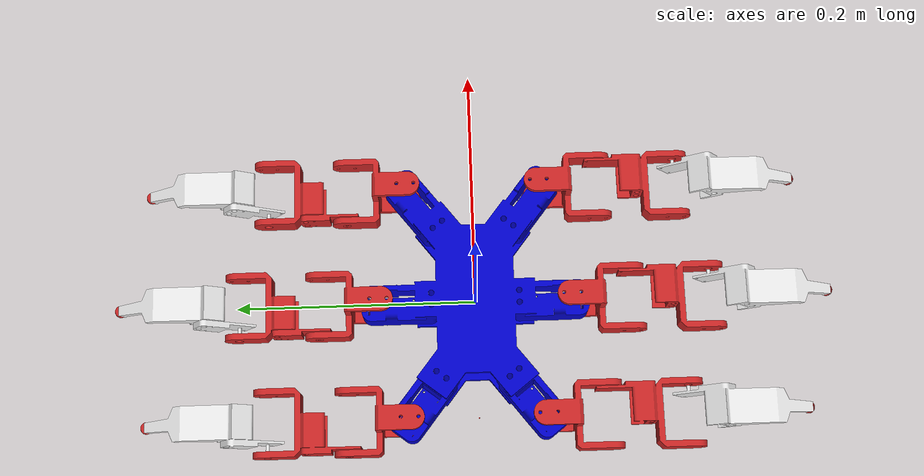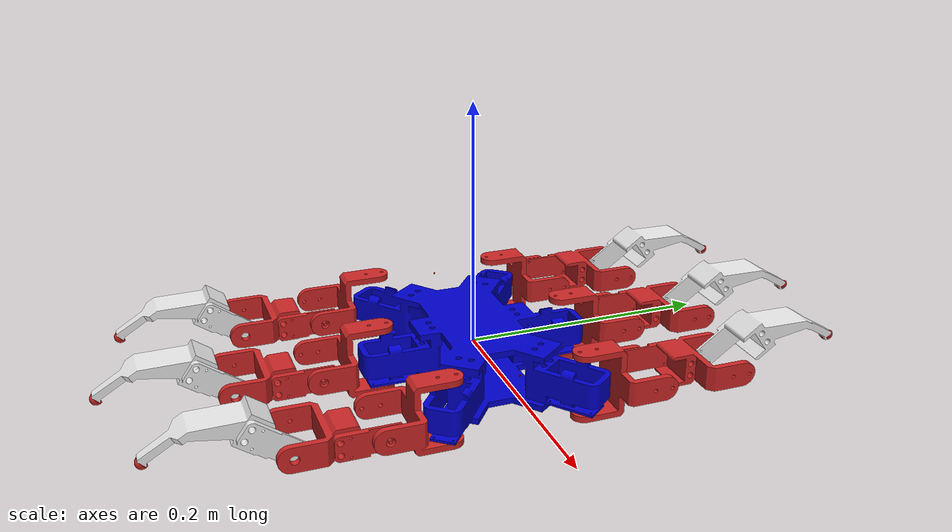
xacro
<?xml version="1.0"?>
	<robot name="myrobot" xmlns:xacro="http://ros.org/wiki/xacro">
	  <xacro:include filename="$(find multi_legged_robo_description)/urdf/common/common.urdf.xacro"/>
	   <xacro:include filename="$(find multi_legged_robo_description)/urdf/chassis/chassis.urdf.xacro"/>
	  <xacro:include filename="$(find multi_legged_robo_description)/urdf/legs/legA.urdf.xacro"/>
	  <xacro:include filename="$(find multi_legged_robo_description)/urdf/legs/legB.urdf.xacro"/>
	  <xacro:include filename="$(find multi_legged_robo_description)/urdf/legs/legC.urdf.xacro"/>
	  <xacro:include filename="$(find multi_legged_robo_description)/urdf/hball/hball.urdf.xacro"/>
	  <xacro:include filename="$(find multi_legged_robo_description)/urdf/just_object/object.urdf.xacro"/>

	  <link name="base_footprint"/>

	  <xacro:chassis parent="base_footprint">
	    <origin xyz="0 0 0 "  rpy="0 0 0"/>
	  </xacro:chassis>

	  <xacro:object parent="chassis_link"  direction="front" >
	    <origin xyz= "-0.1 0 0.0186" />
	  </xacro:object>

	  <xacro:object parent="chassis_link"  direction="back" >
	    <origin xyz= "0.1 0 0.0186" />
	  </xacro:object>

	  <xacro:legA prefix="1" parent="chassis_link" >
	   <origin xyz="0 -0.08 0" rpy="0 0 0"/>
	   <axis xyz=" 0 0 1" />
	  </xacro:legA>

	  <xacro:legB prefix="1" parent="leg1_A_link">
	    <origin xyz="0 -0.0509 0" rpy="0 0 0"/>
	    <axis xyz=" 1 0 0" />
	  </xacro:legB>

	  <xacro:legC prefix="1" parent="leg1_B_link">
	    <origin xyz="0 -0.0669 0" rpy="-0.62 0 0"/>
	    <axis xyz=" 1 0 0" />
	  </xacro:legC>

	  <xacro:legA prefix="2" parent="chassis_link" >
	   <origin xyz="0 0.08 0 " rpy=" 0 0 3.14"/>
	   <axis xyz=" 0 0 1" />
	  </xacro:legA>

	  <xacro:legB prefix="2" parent="leg2_A_link">
	    <origin xyz="0 -0.0509 0" rpy="0 0 0"/>
	    <axis xyz=" 1 0 0" />
	  </xacro:legB>

	  <xacro:legC prefix="2" parent="leg2_B_link">
	    <origin xyz="0 -0.0669 0" rpy="-0.62 0 0"/>
	    <axis xyz=" 1 0 0" />
	  </xacro:legC>

	  <xacro:legA prefix="3" parent="chassis_link" >
	   <origin xyz="0.098 -0.056 0.0 " rpy=" 0 0 0"/>
	   <axis xyz=" 0 0 1" />
	  </xacro:legA>

	  <xacro:legB prefix="3" parent="leg3_A_link">
	    <origin xyz="0 -0.0509 0" rpy="0 0 0 "/>
	    <axis xyz=" 1 0 0" />
	  </xacro:legB>

	  <xacro:legC prefix="3" parent="leg3_B_link">
	    <origin xyz="0 -0.067 0" rpy="-0.62 0 0 "/>
	    <axis xyz=" 1 0 0" />
	  </xacro:legC>

	  <xacro:legA prefix="4" parent="chassis_link" >
	   <origin xyz="0.098 0.056 0 " rpy=" 0 0 3.14"/>
	   <axis xyz=" 0 0 1" />
	  </xacro:legA>

	  <xacro:legB prefix="4" parent="leg4_A_link">
	    <origin xyz="0 -0.0509 0" rpy="0 0 0 "/>
	    <axis xyz=" 1 0 0" />
	  </xacro:legB>

	  <xacro:legC prefix="4" parent="leg4_B_link">
	    <origin xyz="0 -0.067 0" rpy="-0.62 0 0 "/>
	    <axis xyz=" 1 0 0" />
	  </xacro:legC>

	  <xacro:legA prefix="5" parent="chassis_link" >
	   <origin xyz="-0.098 -0.056 0.0 " rpy=" 0 0 0"/>
	   <axis xyz=" 0 0 1" />
	  </xacro:legA>

	  <xacro:legB prefix="5" parent="leg5_A_link">
	    <origin xyz="0 -0.0509 0" rpy="0 0 0 "/>
	    <axis xyz=" 1 0 0" />
	  </xacro:legB>

	  <xacro:legC prefix="5" parent="leg5_B_link">
	    <origin xyz="0 -0.067 0" rpy="-0.62 0 0 "/>
	    <axis xyz=" 1 0 0" />
	  </xacro:legC>

	  <xacro:legA prefix="6" parent="chassis_link" >
	   <origin xyz="-0.098 0.056 0.0 " rpy=" 0 0 3.14"/>
	   <axis xyz=" 0 0 1" />
	  </xacro:legA>

	  <xacro:legB prefix="6" parent="leg6_A_link">
	    <origin xyz="0 -0.0509 0" rpy="0 0 0 "/>
	    <axis xyz=" 1 0 0" />
	  </xacro:legB>

	  <xacro:legC prefix="6" parent="leg6_B_link">
	    <origin xyz="0 -0.067 0" rpy="-0.62 0 0 "/>
	    <axis xyz=" 1 0 0" />
	  </xacro:legC>

	  <xacro:hball number="1" parent="leg1_C_link">
	    <origin xyz="0 -0.082 -0.058" rpy="-0.17 0 0 " scale="1.5 1.5 1.5"/>
	  </xacro:hball>

	  <xacro:hball number="2" parent="leg2_C_link">
	    <origin xyz="0 -0.082 -0.058" rpy="0.17 0 0 "/>
	  </xacro:hball>

	  <xacro:hball number="3" parent="leg3_C_link">
	    <origin xyz="0 -0.082 -0.058" rpy="-0.17 0 0 "/>
	  </xacro:hball>

	  <xacro:hball number="4" parent="leg4_C_link">
	    <origin xyz="0 -0.082 -0.058" rpy="0.17 0 0 "/>
	  </xacro:hball>

	  <xacro:hball number="5" parent="leg5_C_link">
	    <origin xyz="0 -0.082 -0.058" rpy="-0.17 0 0 "/>
	  </xacro:hball>

	  <xacro:hball number="6" parent="leg6_C_link">
	    <origin xyz="0 -0.082 -0.058" rpy="0.17 0 0 "/>
	  </xacro:hball>

	  <gazebo>
	    <plugin name="gazebo_ros_control" filename="libgazebo_ros_control.so">
	      <robotSimType>gazebo_ros_control/DefaultRobotHWSim</robotSimType>
	      <robotNamespace>/myrobot</robotNamespace>
	      <legacyModeNS>true</legacyModeNS>
	    </plugin>
	  </gazebo>

</robot>

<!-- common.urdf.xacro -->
<robot xmlns:xacro="http://ros.org/wiki/xacro">
	<!-- PROPERTY LIST -->
	  <!-- Inertial. Units are kg*m^2 -->
	  <xacro:macro name="box_inertia" params="m x y z">
	    <inertia ixx="${m*(y*y+z*z)/12}" ixy = "0" ixz = "0"
	             iyy="${m*(z*z+x*x)/12}" iyz = "0"
	             izz="${m*(x*x+y*y)/12}" />
	  </xacro:macro>
	  <xacro:macro name="cylinder_inertia" params="m r h">
	    <inertia ixx="${m*(3*r*r+h*h)/12}" ixy="0" ixz="0"
	             iyy="${m*(3*r*r+h*h)/12}" iyz="0"
	             izz="${m*r*r/2}" />
	  </xacro:macro>
	  <xacro:macro name="sphere_inertia" params="m r">
	    <inertia ixx="${m*r*r/5}" ixy="0" ixz="0"
	             iyy="${m*r*r/5}" iyz="0"
	             izz="${m*r*r/5}" />
	  </xacro:macro>

	  <!-- Color -->
	  <material name="blue">
	    <color rgba="0.0 0.0 0.8 1.0"/>
	  </material>
	  <material name="green">
	    <color rgba="0.0 0.8 0.0 1.0"/>
	  </material>
	  <material name="red">
	    <color rgba="0.8 0.0 0.0 1.0"/>
	  </material>
	  <material name="white">
	    <color rgba="1.0 1.0 1.0 1.0"/>
	  </material>
	  <material name="yellow">
	    <color rgba="0.8 0.8 0.0 1.0"/>
	  </material>

</robot>

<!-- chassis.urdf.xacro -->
<robot xmlns:xacro="http://ros.org/wiki/xacro">

   <xacro:macro name="chassis" params="parent *joint_origin">
	<joint name="chassis_joint" type="fixed">
		<xacro:insert_block name="joint_origin"/>
		<parent link="${parent}"/>
		<child link="chassis_link"/>
	</joint>

	<link name="chassis_link">
		<visual>
			<geometry>
				<mesh filename="file://$(find multi_legged_robo_description)/meshes/body_6.stl" />
			</geometry>
			<material name="blue"/>
		</visual>

        //以下，gazeboで使うために追加で必要な情報（collision，inertial，gazebo reference）
		<collision>
			<geometry>
				<mesh filename="file://$(find multi_legged_robo_description)/meshes/body_6.dae"/>
			</geometry>
		</collision>

		<inertial>
			<origin xyz="0 0 0.024"/>
			<mass value="1.2"/>
			<inertia ixx="0.00032" ixy="0.0" ixz="0" iyy="0.00029" iyz="0.0" izz="0.0005" />
		</inertial>
	</link>
    //以下のコードがないと，gazeboで色を表示できない
	<gazebo reference="chassis_link">
			<material>Gazebo/Blue</material>
			<turnGravityOff>false</turnGravityOff>
	</gazebo>
  </xacro:macro>
</robot>

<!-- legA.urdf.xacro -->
<robot xmlns:xacro="http://ros.org/wiki/xacro">

	  <xacro:macro name="legA" params="prefix parent *joint_origin *joint_axis ">
	    <joint name="leg${prefix}_A_joint" type="revolute">
	      <xacro:insert_block name="joint_origin" />
	      <xacro:insert_block name="joint_axis" />
	      <limit effort="100" lower="-1.0" upper="1.0" velocity="10"/>
	      <parent link="${parent}" />
	      <child link="leg${prefix}_A_link" />
	    </joint>

	    <transmission name="legA_trans">
	      <type>transmission_interface/SimpleTransmission</type>
	      <joint name="leg${prefix}_A_joint">
	        <hardwareInterface>hardware_interface/PositionJointInterface</hardwareInterface>
	      </joint>
	      <actuator name="leg1_motor">
	        <hardwareInterface>hardware_interface/PositionointInterface</hardwareInterface>
	        <mechanismReduction>1</mechanismReduction>
	      </actuator>
	    </transmission>

	    <link name="leg${prefix}_A_link">
	      <visual>
	        <geometry>
	          <mesh filename="file://$(find multi_legged_robo_description)/meshes/first_link.stl"/>
	        </geometry>
	      </visual>

	      <collision>
	        <geometry>
	          <mesh filename="file://$(find multi_legged_robo_description)/meshes/first_link.dae"/>
	        </geometry>
	      </collision>

	      <inertial>
	        <origin xyz="0 -0.02 0" />
	        <mass value="0.121"/>
	        <inertia ixx="0.00001" ixy="0.0" ixz="0.0" iyy="0.00001" iyz="0.0" izz="0.00001" />
	      </inertial>
	    </link>
		<gazebo reference="leg${prefix}_A_link">
			<material>Gazebo/Red</material>
			<turnGravityOff>false</turnGravityOff>
		</gazebo>

	  </xacro:macro>

</robot>

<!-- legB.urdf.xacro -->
<robot xmlns:xacro="http://ros.org/wiki/xacro">

	  <xacro:macro name="legB" params="prefix parent *joint_origin *joint_axis">
	    <joint name="leg${prefix}_B_joint" type="revolute">
	      <xacro:insert_block name="joint_origin" />
	      <xacro:insert_block name="joint_axis" />
	      <limit effort="100" lower="-1.6" upper="1.6" velocity="10"/>
	      <parent link="${parent}" />
	      <child link="leg${prefix}_B_link" />
	    </joint>

	    <transmission name="legB_trans">
	      <type>transmission_interface/SimpleTransmission</type>
	      <joint name="leg${prefix}_B_joint">
	        <hardwareInterface>hardware_interface/PositionJointInterface</hardwareInterface>
	      </joint>
	      <actuator name="legB_motor">
	        <hardwareInterface>hardware_interface/PositionointInterface</hardwareInterface>
	        <mechanismReduction>1</mechanismReduction>
	      </actuator>
	    </transmission>

	    <link name="leg${prefix}_B_link">
	      <visual>
	        <geometry>
	          <mesh filename="file://$(find multi_legged_robo_description)/meshes/second_link.stl"/>
	        </geometry>
	      </visual>

	      <collision>
	        <geometry>
	          <mesh filename="file://$(find multi_legged_robo_description)/meshes/second_link.dae"/>
	        </geometry>
	      </collision>

	      <inertial>
	        <origin xyz="0 -0.0015 -0.0014" />
	        <mass value="0.022"/>
	        <inertia ixx="0.000005" ixy="0.0" ixz="0.0" iyy="0.00001" iyz="0.0" izz="0.000013" />
	      </inertial>
	    </link>
		<gazebo reference="leg${prefix}_B_link">
			<material>Gazebo/Red</material>
			<turnGravityOff>false</turnGravityOff>
		</gazebo>

	  </xacro:macro>

</robot>

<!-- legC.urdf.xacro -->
<robot xmlns:xacro="http://ros.org/wiki/xacro">

	  <xacro:macro name="legC" params="prefix parent *joint_origin *joint_axis">
	    <joint name="leg${prefix}_C_joint" type="revolute">
	      <xacro:insert_block name="joint_origin" />
	      <xacro:insert_block name="joint_axis" />
	      <limit effort="100" lower="-2.5" upper="2.5" velocity="10"/>
	      <parent link="${parent}" />
	      <child link="leg${prefix}_C_link" />
	    </joint>

	    <transmission name="legC_trans">
	      <type>transmission_interface/SimpleTransmission</type>
	      <joint name="leg${prefix}_C_joint">
	        <hardwareInterface>hardware_interface/PositionJointInterface</hardwareInterface>
	      </joint>
	      <actuator name="legC_motor">
	        <hardwareInterface>hardware_interface/PositionointInterface</hardwareInterface>
	        <mechanismReduction>1</mechanismReduction>
	      </actuator>
	    </transmission>

	    <link name="leg${prefix}_C_link">
	      <visual>
	        <geometry>
	          <mesh filename="file://$(find multi_legged_robo_description)/meshes/third_link.stl"/>
	        </geometry>
	      </visual>

	      <collision>
	        <geometry>
	          <mesh filename="file://$(find multi_legged_robo_description)/meshes/third_link.dae"/>
	        </geometry>
	      </collision>

	      <inertial>
	        <origin xyz="-0.005 -0.002 0.003" />
	        <mass value="0.23"/>
	        <inertia ixx="0.0012" ixy="0.0" ixz="0.0" iyy="0.003" iyz="0.0" izz="0.0012" />
	      </inertial>
	    </link>
		<gazebo reference="leg${prefix}_C_link">
			<material>Gazebo/White</material>
			<turnGravityOff>false</turnGravityOff>
                         <mu1 value="1.0"/>
                         <mu2 value="1.0"/>
                         <slip1 value="0.1"/>
                         <slip2 value="0.1"/>

		</gazebo>
	  </xacro:macro>

</robot>

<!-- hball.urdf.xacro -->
<robot xmlns:xacro="http://ros.org/wiki/xacro">

	  <xacro:macro name="hball" params="number parent *joint_origin">
	    <joint name="${number}" type="revolute">
	      <dynamics damping="0.8"/>
	      <limit effort="0" lower="0" upper="0" velocity="0"/>
	      <xacro:insert_block name="joint_origin" />
	      <parent link="${parent}" />
	      <child link="hball_${number}_link" />
	    </joint>

	    <link name="hball_${number}_link">
	      <visual>
	        <geometry>
	          <mesh filename="file://$(find multi_legged_robo_description)/meshes/hball.stl"/>
	        </geometry>
	      </visual>

	      <collision>
	        <geometry>
	          <mesh filename="file://$(find multi_legged_robo_description)/meshes/hball.dae"/>
	        </geometry>
	      </collision>

	      <inertial>
	        <origin xyz="0 0 -0.03" />
	        <mass value="0.5"/>
	        <inertia ixx="0.001" ixy="0.0" ixz="0.0" iyy="0.001" iyz="0.0" izz="0.001" />
	      </inertial>
	    </link>
		<gazebo reference="hball_${number}_link">
			<material>Gazebo/Red</material>
			<turnGravityOff>false</turnGravityOff>
			<mu1 value="1.0"/>
                       <mu2 value="1.0"/>
		</gazebo>

	  </xacro:macro>

</robot>

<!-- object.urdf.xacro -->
<robot xmlns:xacro="http://ros.org/wiki/xacro">

 <xacro:property name="size" value="0.001 0.001 0.001"/>

  <xacro:macro name="object" params="parent direction *joint_origin">

	<joint name="${direction}object_joint" type="revolute">
	  <limit effort="0" lower="0" upper="0" velocity="0"/>
		<xacro:insert_block name="joint_origin"/>
		<parent link="${parent}"/>
		<child link="${direction}object_link"/>
	</joint>

	<link name="${direction}object_link">
		<visual>
			<geometry>
				<box size="${size}"/>
			</geometry>
			<material name="red"/>
		</visual>

		<collision>
			<geometry>
				<box size="${size}"/>
			</geometry>
		</collision>

		<inertial>
			<origin xyz="0 0 0"/>
			<mass value="0.001"/>
			<inertia ixx="0.0001" ixy="0.0" ixz="0" iyy="0.0001" iyz="0.0" izz="0.0001" />
		</inertial>
	</link>

	<gazebo reference="${direction}object_link">
			<material>Gazebo/red</material>
			<turnGravityOff>false</turnGravityOff>
	</gazebo>
  </xacro:macro>
</robot>
